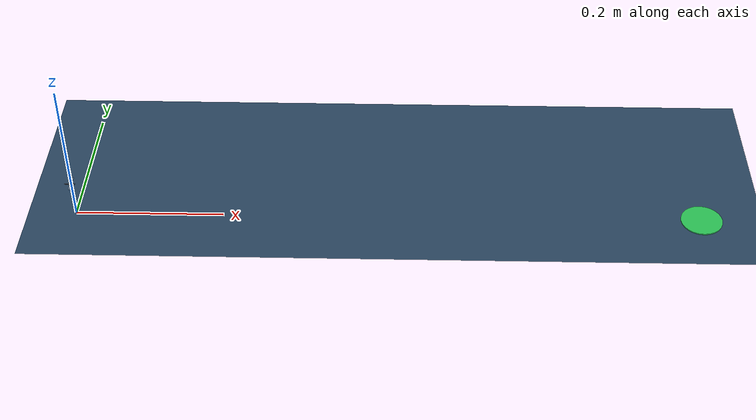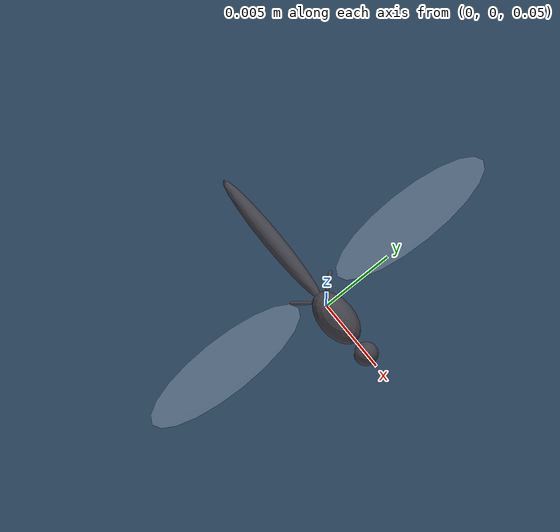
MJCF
<mujoco model="flapping_flyer">

  <option timestep="1e-4" gravity="0 0 -9.81" integrator="implicitfast"/>

  <!-- ===================== VISUALS (menagerie look) ===================== -->
  <visual>
    <headlight diffuse="0.6 0.6 0.6" ambient="0.3 0.3 0.3" specular="0 0 0"/>
    <rgba haze="0.15 0.25 0.35 1"/>
    <global azimuth="120" elevation="-20" offwidth="1280" offheight="960"/>
  </visual>

  <asset>
    <texture type="skybox" builtin="gradient" rgb1="0.3 0.5 0.7" rgb2="0 0 0"
             width="512" height="3072"/>
    <texture type="2d" name="groundplane" builtin="checker" mark="edge"
             rgb1="0.2 0.3 0.4" rgb2="0.1 0.2 0.3" markrgb="0.8 0.8 0.8"
             width="300" height="300"/>
    <material name="groundplane" texture="groundplane" texuniform="true"
              texrepeat="5 5" reflectance="0.2"/>
    <material name="thorax_mat" rgba="0.25 0.25 0.28 1"/>
    <material name="wing_mat"   rgba="0.55 0.62 0.70 0.45"/>
  </asset>

  <default>
    <joint damping="1e-8" armature="0"/>
    <geom density="1200"/>
  </default>

  <worldbody>
    <light pos="0 0 0.3" dir="0 0 -1" directional="true"
           diffuse="0.7 0.7 0.7"/>
    <geom name="floor" type="plane" size="0 0 0.01" material="groundplane"/>
    <geom name="bw0" type="box" pos="0.0000 -0.0320 0.0400" size="0.0050 0.0050 0.0400" group="3" rgba="0.62 0.66 0.72 1" contype="0" conaffinity="0"/>
    <geom name="bw1" type="box" pos="0.0070 -0.0320 0.0400" size="0.0050 0.0050 0.0400" group="3" rgba="0.62 0.66 0.72 1" contype="0" conaffinity="0"/>
    <geom name="bw2" type="box" pos="0.0139 -0.0320 0.0400" size="0.0050 0.0050 0.0400" group="3" rgba="0.62 0.66 0.72 1" contype="0" conaffinity="0"/>
    <geom name="bw3" type="box" pos="0.0209 -0.0320 0.0400" size="0.0050 0.0050 0.0400" group="3" rgba="0.62 0.66 0.72 1" contype="0" conaffinity="0"/>
    <geom name="bw4" type="box" pos="0.0278 -0.0320 0.0400" size="0.0050 0.0050 0.0400" group="3" rgba="0.62 0.66 0.72 1" contype="0" conaffinity="0"/>
    <geom name="bw5" type="box" pos="0.0348 -0.0320 0.0400" size="0.0050 0.0050 0.0400" group="3" rgba="0.62 0.66 0.72 1" contype="0" conaffinity="0"/>
    <geom name="bw6" type="box" pos="0.0417 -0.0320 0.0400" size="0.0050 0.0050 0.0400" group="3" rgba="0.62 0.66 0.72 1" contype="0" conaffinity="0"/>
    <geom name="bw7" type="box" pos="0.0487 -0.0320 0.0400" size="0.0050 0.0050 0.0400" group="3" rgba="0.62 0.66 0.72 1" contype="0" conaffinity="0"/>
    <geom name="bw8" type="box" pos="0.0556 -0.0320 0.0400" size="0.0050 0.0050 0.0400" group="3" rgba="0.62 0.66 0.72 1" contype="0" conaffinity="0"/>
    <geom name="bw9" type="box" pos="0.0626 -0.0320 0.0400" size="0.0050 0.0050 0.0400" group="3" rgba="0.62 0.66 0.72 1" contype="0" conaffinity="0"/>
    <geom name="bw10" type="box" pos="0.0695 -0.0320 0.0400" size="0.0050 0.0050 0.0400" group="3" rgba="0.62 0.66 0.72 1" contype="0" conaffinity="0"/>
    <geom name="bw11" type="box" pos="0.0765 -0.0320 0.0400" size="0.0050 0.0050 0.0400" group="3" rgba="0.62 0.66 0.72 1" contype="0" conaffinity="0"/>
    <geom name="bw12" type="box" pos="0.0834 -0.0320 0.0400" size="0.0050 0.0050 0.0400" group="3" rgba="0.62 0.66 0.72 1" contype="0" conaffinity="0"/>
    <geom name="bw13" type="box" pos="0.0904 -0.0320 0.0400" size="0.0050 0.0050 0.0400" group="3" rgba="0.62 0.66 0.72 1" contype="0" conaffinity="0"/>
    <geom name="bw14" type="box" pos="0.0973 -0.0320 0.0400" size="0.0050 0.0050 0.0400" group="3" rgba="0.62 0.66 0.72 1" contype="0" conaffinity="0"/>
    <geom name="bw15" type="box" pos="0.1043 -0.0320 0.0400" size="0.0050 0.0050 0.0400" group="3" rgba="0.62 0.66 0.72 1" contype="0" conaffinity="0"/>
    <geom name="bw16" type="box" pos="0.1112 -0.0320 0.0400" size="0.0050 0.0050 0.0400" group="3" rgba="0.62 0.66 0.72 1" contype="0" conaffinity="0"/>
    <geom name="bw17" type="box" pos="0.1182 -0.0320 0.0400" size="0.0050 0.0050 0.0400" group="3" rgba="0.62 0.66 0.72 1" contype="0" conaffinity="0"/>
    <geom name="bw18" type="box" pos="0.1251 -0.0320 0.0400" size="0.0050 0.0050 0.0400" group="3" rgba="0.62 0.66 0.72 1" contype="0" conaffinity="0"/>
    <geom name="bw19" type="box" pos="0.1321 -0.0320 0.0400" size="0.0050 0.0050 0.0400" group="3" rgba="0.62 0.66 0.72 1" contype="0" conaffinity="0"/>
    <geom name="bw20" type="box" pos="0.1390 -0.0320 0.0400" size="0.0050 0.0050 0.0400" group="3" rgba="0.62 0.66 0.72 1" contype="0" conaffinity="0"/>
    <geom name="bw21" type="box" pos="0.1460 -0.0320 0.0400" size="0.0050 0.0050 0.0400" group="3" rgba="0.62 0.66 0.72 1" contype="0" conaffinity="0"/>
    <geom name="bw22" type="box" pos="0.1529 -0.0320 0.0400" size="0.0050 0.0050 0.0400" group="3" rgba="0.62 0.66 0.72 1" contype="0" conaffinity="0"/>
    <geom name="bw23" type="box" pos="0.1599 -0.0320 0.0400" size="0.0050 0.0050 0.0400" group="3" rgba="0.62 0.66 0.72 1" contype="0" conaffinity="0"/>
    <geom name="bw24" type="box" pos="0.1668 -0.0320 0.0400" size="0.0050 0.0050 0.0400" group="3" rgba="0.62 0.66 0.72 1" contype="0" conaffinity="0"/>
    <geom name="bw25" type="box" pos="0.1738 -0.0320 0.0400" size="0.0050 0.0050 0.0400" group="3" rgba="0.62 0.66 0.72 1" contype="0" conaffinity="0"/>
    <geom name="bw26" type="box" pos="0.1807 -0.0320 0.0400" size="0.0050 0.0050 0.0400" group="3" rgba="0.62 0.66 0.72 1" contype="0" conaffinity="0"/>
    <geom name="bw27" type="box" pos="0.1877 -0.0320 0.0400" size="0.0050 0.0050 0.0400" group="3" rgba="0.62 0.66 0.72 1" contype="0" conaffinity="0"/>
    <geom name="bw28" type="box" pos="0.1946 -0.0320 0.0400" size="0.0050 0.0050 0.0400" group="3" rgba="0.62 0.66 0.72 1" contype="0" conaffinity="0"/>
    <geom name="bw29" type="box" pos="0.2016 -0.0320 0.0400" size="0.0050 0.0050 0.0400" group="3" rgba="0.62 0.66 0.72 1" contype="0" conaffinity="0"/>
    <geom name="bw30" type="box" pos="0.2085 -0.0320 0.0400" size="0.0050 0.0050 0.0400" group="3" rgba="0.62 0.66 0.72 1" contype="0" conaffinity="0"/>
    <geom name="bw31" type="box" pos="0.2155 -0.0320 0.0400" size="0.0050 0.0050 0.0400" group="3" rgba="0.62 0.66 0.72 1" contype="0" conaffinity="0"/>
    <geom name="bw32" type="box" pos="0.2224 -0.0320 0.0400" size="0.0050 0.0050 0.0400" group="3" rgba="0.62 0.66 0.72 1" contype="0" conaffinity="0"/>
    <geom name="bw33" type="box" pos="0.2294 -0.0320 0.0400" size="0.0050 0.0050 0.0400" group="3" rgba="0.62 0.66 0.72 1" contype="0" conaffinity="0"/>
    <geom name="bw34" type="box" pos="0.2363 -0.0320 0.0400" size="0.0050 0.0050 0.0400" group="3" rgba="0.62 0.66 0.72 1" contype="0" conaffinity="0"/>
    <geom name="bw35" type="box" pos="0.2433 -0.0320 0.0400" size="0.0050 0.0050 0.0400" group="3" rgba="0.62 0.66 0.72 1" contype="0" conaffinity="0"/>
    <geom name="bw36" type="box" pos="0.2502 -0.0320 0.0400" size="0.0050 0.0050 0.0400" group="3" rgba="0.62 0.66 0.72 1" contype="0" conaffinity="0"/>
    <geom name="bw37" type="box" pos="0.2572 -0.0320 0.0400" size="0.0050 0.0050 0.0400" group="3" rgba="0.62 0.66 0.72 1" contype="0" conaffinity="0"/>
    <geom name="bw38" type="box" pos="0.2641 -0.0320 0.0400" size="0.0050 0.0050 0.0400" group="3" rgba="0.62 0.66 0.72 1" contype="0" conaffinity="0"/>
    <geom name="bw39" type="box" pos="0.2711 -0.0320 0.0400" size="0.0050 0.0050 0.0400" group="3" rgba="0.62 0.66 0.72 1" contype="0" conaffinity="0"/>
    <geom name="bw40" type="box" pos="0.2780 -0.0320 0.0400" size="0.0050 0.0050 0.0400" group="3" rgba="0.62 0.66 0.72 1" contype="0" conaffinity="0"/>
    <geom name="bw41" type="box" pos="0.2850 -0.0320 0.0400" size="0.0050 0.0050 0.0400" group="3" rgba="0.62 0.66 0.72 1" contype="0" conaffinity="0"/>
    <geom name="bw42" type="box" pos="0.2919 -0.0320 0.0400" size="0.0050 0.0050 0.0400" group="3" rgba="0.62 0.66 0.72 1" contype="0" conaffinity="0"/>
    <geom name="bw43" type="box" pos="0.2989 -0.0320 0.0400" size="0.0050 0.0050 0.0400" group="3" rgba="0.62 0.66 0.72 1" contype="0" conaffinity="0"/>
    <geom name="bw44" type="box" pos="0.3058 -0.0320 0.0400" size="0.0050 0.0050 0.0400" group="3" rgba="0.62 0.66 0.72 1" contype="0" conaffinity="0"/>
    <geom name="bw45" type="box" pos="0.3128 -0.0320 0.0400" size="0.0050 0.0050 0.0400" group="3" rgba="0.62 0.66 0.72 1" contype="0" conaffinity="0"/>
    <geom name="bw46" type="box" pos="0.3197 -0.0320 0.0400" size="0.0050 0.0050 0.0400" group="3" rgba="0.62 0.66 0.72 1" contype="0" conaffinity="0"/>
    <geom name="bw47" type="box" pos="0.3267 -0.0320 0.0400" size="0.0050 0.0050 0.0400" group="3" rgba="0.62 0.66 0.72 1" contype="0" conaffinity="0"/>
    <geom name="bw48" type="box" pos="0.3336 -0.0320 0.0400" size="0.0050 0.0050 0.0400" group="3" rgba="0.62 0.66 0.72 1" contype="0" conaffinity="0"/>
    <geom name="bw49" type="box" pos="0.3406 -0.0320 0.0400" size="0.0050 0.0050 0.0400" group="3" rgba="0.62 0.66 0.72 1" contype="0" conaffinity="0"/>
    <geom name="bw50" type="box" pos="0.3475 -0.0320 0.0400" size="0.0050 0.0050 0.0400" group="3" rgba="0.62 0.66 0.72 1" contype="0" conaffinity="0"/>
    <geom name="bw51" type="box" pos="0.3545 -0.0320 0.0400" size="0.0050 0.0050 0.0400" group="3" rgba="0.62 0.66 0.72 1" contype="0" conaffinity="0"/>
    <geom name="bw52" type="box" pos="0.3614 -0.0320 0.0400" size="0.0050 0.0050 0.0400" group="3" rgba="0.62 0.66 0.72 1" contype="0" conaffinity="0"/>
    <geom name="bw53" type="box" pos="0.3684 -0.0320 0.0400" size="0.0050 0.0050 0.0400" group="3" rgba="0.62 0.66 0.72 1" contype="0" conaffinity="0"/>
    <geom name="bw54" type="box" pos="0.3753 -0.0320 0.0400" size="0.0050 0.0050 0.0400" group="3" rgba="0.62 0.66 0.72 1" contype="0" conaffinity="0"/>
    <geom name="bw55" type="box" pos="0.3823 -0.0320 0.0400" size="0.0050 0.0050 0.0400" group="3" rgba="0.62 0.66 0.72 1" contype="0" conaffinity="0"/>
    <geom name="bw56" type="box" pos="0.3892 -0.0320 0.0400" size="0.0050 0.0050 0.0400" group="3" rgba="0.62 0.66 0.72 1" contype="0" conaffinity="0"/>
    <geom name="bw57" type="box" pos="0.3962 -0.0320 0.0400" size="0.0050 0.0050 0.0400" group="3" rgba="0.62 0.66 0.72 1" contype="0" conaffinity="0"/>
    <geom name="bw58" type="box" pos="0.4031 -0.0320 0.0400" size="0.0050 0.0050 0.0400" group="3" rgba="0.62 0.66 0.72 1" contype="0" conaffinity="0"/>
    <geom name="bw59" type="box" pos="0.4101 -0.0320 0.0400" size="0.0050 0.0050 0.0400" group="3" rgba="0.62 0.66 0.72 1" contype="0" conaffinity="0"/>
    <geom name="bw60" type="box" pos="0.4170 -0.0320 0.0400" size="0.0050 0.0050 0.0400" group="3" rgba="0.62 0.66 0.72 1" contype="0" conaffinity="0"/>
    <geom name="bw61" type="box" pos="0.4240 -0.0320 0.0400" size="0.0050 0.0050 0.0400" group="3" rgba="0.62 0.66 0.72 1" contype="0" conaffinity="0"/>
    <geom name="bw62" type="box" pos="0.4310 -0.0320 0.0400" size="0.0050 0.0050 0.0400" group="3" rgba="0.62 0.66 0.72 1" contype="0" conaffinity="0"/>
    <geom name="bw63" type="box" pos="0.4379 -0.0320 0.0400" size="0.0050 0.0050 0.0400" group="3" rgba="0.62 0.66 0.72 1" contype="0" conaffinity="0"/>
    <geom name="bw64" type="box" pos="0.4449 -0.0320 0.0400" size="0.0050 0.0050 0.0400" group="3" rgba="0.62 0.66 0.72 1" contype="0" conaffinity="0"/>
    <geom name="bw65" type="box" pos="0.4518 -0.0320 0.0400" size="0.0050 0.0050 0.0400" group="3" rgba="0.62 0.66 0.72 1" contype="0" conaffinity="0"/>
    <geom name="bw66" type="box" pos="0.4588 -0.0320 0.0400" size="0.0050 0.0050 0.0400" group="3" rgba="0.62 0.66 0.72 1" contype="0" conaffinity="0"/>
    <geom name="bw67" type="box" pos="0.4657 -0.0320 0.0400" size="0.0050 0.0050 0.0400" group="3" rgba="0.62 0.66 0.72 1" contype="0" conaffinity="0"/>
    <geom name="bw68" type="box" pos="0.4727 -0.0320 0.0400" size="0.0050 0.0050 0.0400" group="3" rgba="0.62 0.66 0.72 1" contype="0" conaffinity="0"/>
    <geom name="bw69" type="box" pos="0.4796 -0.0320 0.0400" size="0.0050 0.0050 0.0400" group="3" rgba="0.62 0.66 0.72 1" contype="0" conaffinity="0"/>
    <geom name="bw70" type="box" pos="0.4866 -0.0320 0.0400" size="0.0050 0.0050 0.0400" group="3" rgba="0.62 0.66 0.72 1" contype="0" conaffinity="0"/>
    <geom name="bw71" type="box" pos="0.4935 -0.0320 0.0400" size="0.0050 0.0050 0.0400" group="3" rgba="0.62 0.66 0.72 1" contype="0" conaffinity="0"/>
    <geom name="bw72" type="box" pos="0.5005 -0.0320 0.0400" size="0.0050 0.0050 0.0400" group="3" rgba="0.62 0.66 0.72 1" contype="0" conaffinity="0"/>
    <geom name="bw73" type="box" pos="0.5074 -0.0320 0.0400" size="0.0050 0.0050 0.0400" group="3" rgba="0.62 0.66 0.72 1" contype="0" conaffinity="0"/>
    <geom name="bw74" type="box" pos="0.5144 -0.0320 0.0400" size="0.0050 0.0050 0.0400" group="3" rgba="0.62 0.66 0.72 1" contype="0" conaffinity="0"/>
    <geom name="bw75" type="box" pos="0.5213 -0.0320 0.0400" size="0.0050 0.0050 0.0400" group="3" rgba="0.62 0.66 0.72 1" contype="0" conaffinity="0"/>
    <geom name="bw76" type="box" pos="0.5283 -0.0320 0.0400" size="0.0050 0.0050 0.0400" group="3" rgba="0.62 0.66 0.72 1" contype="0" conaffinity="0"/>
    <geom name="bw77" type="box" pos="0.5352 -0.0320 0.0400" size="0.0050 0.0050 0.0400" group="3" rgba="0.62 0.66 0.72 1" contype="0" conaffinity="0"/>
    <geom name="bw78" type="box" pos="0.5422 -0.0320 0.0400" size="0.0050 0.0050 0.0400" group="3" rgba="0.62 0.66 0.72 1" contype="0" conaffinity="0"/>
    <geom name="bw79" type="box" pos="0.5491 -0.0320 0.0400" size="0.0050 0.0050 0.0400" group="3" rgba="0.62 0.66 0.72 1" contype="0" conaffinity="0"/>
    <geom name="bw80" type="box" pos="0.5561 -0.0320 0.0400" size="0.0050 0.0050 0.0400" group="3" rgba="0.62 0.66 0.72 1" contype="0" conaffinity="0"/>
    <geom name="bw81" type="box" pos="0.5630 -0.0320 0.0400" size="0.0050 0.0050 0.0400" group="3" rgba="0.62 0.66 0.72 1" contype="0" conaffinity="0"/>
    <geom name="bw82" type="box" pos="0.5700 -0.0320 0.0400" size="0.0050 0.0050 0.0400" group="3" rgba="0.62 0.66 0.72 1" contype="0" conaffinity="0"/>
    <geom name="bw83" type="box" pos="0.5769 -0.0320 0.0400" size="0.0050 0.0050 0.0400" group="3" rgba="0.62 0.66 0.72 1" contype="0" conaffinity="0"/>
    <geom name="bw84" type="box" pos="0.5839 -0.0320 0.0400" size="0.0050 0.0050 0.0400" group="3" rgba="0.62 0.66 0.72 1" contype="0" conaffinity="0"/>
    <geom name="bw85" type="box" pos="0.5908 -0.0320 0.0400" size="0.0050 0.0050 0.0400" group="3" rgba="0.62 0.66 0.72 1" contype="0" conaffinity="0"/>
    <geom name="bw86" type="box" pos="0.5978 -0.0320 0.0400" size="0.0050 0.0050 0.0400" group="3" rgba="0.62 0.66 0.72 1" contype="0" conaffinity="0"/>
    <geom name="bw87" type="box" pos="0.6047 -0.0320 0.0400" size="0.0050 0.0050 0.0400" group="3" rgba="0.62 0.66 0.72 1" contype="0" conaffinity="0"/>
    <geom name="bw88" type="box" pos="0.6117 -0.0320 0.0400" size="0.0050 0.0050 0.0400" group="3" rgba="0.62 0.66 0.72 1" contype="0" conaffinity="0"/>
    <geom name="bw89" type="box" pos="0.6186 -0.0320 0.0400" size="0.0050 0.0050 0.0400" group="3" rgba="0.62 0.66 0.72 1" contype="0" conaffinity="0"/>
    <geom name="bw90" type="box" pos="0.6256 -0.0320 0.0400" size="0.0050 0.0050 0.0400" group="3" rgba="0.62 0.66 0.72 1" contype="0" conaffinity="0"/>
    <geom name="bw91" type="box" pos="0.6325 -0.0320 0.0400" size="0.0050 0.0050 0.0400" group="3" rgba="0.62 0.66 0.72 1" contype="0" conaffinity="0"/>
    <geom name="bw92" type="box" pos="0.6395 -0.0320 0.0400" size="0.0050 0.0050 0.0400" group="3" rgba="0.62 0.66 0.72 1" contype="0" conaffinity="0"/>
    <geom name="bw93" type="box" pos="0.6464 -0.0320 0.0400" size="0.0050 0.0050 0.0400" group="3" rgba="0.62 0.66 0.72 1" contype="0" conaffinity="0"/>
    <geom name="bw94" type="box" pos="0.6534 -0.0320 0.0400" size="0.0050 0.0050 0.0400" group="3" rgba="0.62 0.66 0.72 1" contype="0" conaffinity="0"/>
    <geom name="bw95" type="box" pos="0.6603 -0.0320 0.0400" size="0.0050 0.0050 0.0400" group="3" rgba="0.62 0.66 0.72 1" contype="0" conaffinity="0"/>
    <geom name="bw96" type="box" pos="0.6673 -0.0320 0.0400" size="0.0050 0.0050 0.0400" group="3" rgba="0.62 0.66 0.72 1" contype="0" conaffinity="0"/>
    <geom name="bw97" type="box" pos="0.6742 -0.0320 0.0400" size="0.0050 0.0050 0.0400" group="3" rgba="0.62 0.66 0.72 1" contype="0" conaffinity="0"/>
    <geom name="bw98" type="box" pos="0.6812 -0.0320 0.0400" size="0.0050 0.0050 0.0400" group="3" rgba="0.62 0.66 0.72 1" contype="0" conaffinity="0"/>
    <geom name="bw99" type="box" pos="0.6881 -0.0320 0.0400" size="0.0050 0.0050 0.0400" group="3" rgba="0.62 0.66 0.72 1" contype="0" conaffinity="0"/>
    <geom name="bw100" type="box" pos="0.6951 -0.0320 0.0400" size="0.0050 0.0050 0.0400" group="3" rgba="0.62 0.66 0.72 1" contype="0" conaffinity="0"/>
    <geom name="bw101" type="box" pos="0.7020 -0.0320 0.0400" size="0.0050 0.0050 0.0400" group="3" rgba="0.62 0.66 0.72 1" contype="0" conaffinity="0"/>
    <geom name="bw102" type="box" pos="0.7090 -0.0320 0.0400" size="0.0050 0.0050 0.0400" group="3" rgba="0.62 0.66 0.72 1" contype="0" conaffinity="0"/>
    <geom name="bw103" type="box" pos="0.7159 -0.0320 0.0400" size="0.0050 0.0050 0.0400" group="3" rgba="0.62 0.66 0.72 1" contype="0" conaffinity="0"/>
    <geom name="bw104" type="box" pos="0.7229 -0.0320 0.0400" size="0.0050 0.0050 0.0400" group="3" rgba="0.62 0.66 0.72 1" contype="0" conaffinity="0"/>
    <geom name="bw105" type="box" pos="0.7298 -0.0320 0.0400" size="0.0050 0.0050 0.0400" group="3" rgba="0.62 0.66 0.72 1" contype="0" conaffinity="0"/>
    <geom name="bw106" type="box" pos="0.7368 -0.0320 0.0400" size="0.0050 0.0050 0.0400" group="3" rgba="0.62 0.66 0.72 1" contype="0" conaffinity="0"/>
    <geom name="bw107" type="box" pos="0.7437 -0.0320 0.0400" size="0.0050 0.0050 0.0400" group="3" rgba="0.62 0.66 0.72 1" contype="0" conaffinity="0"/>
    <geom name="bw108" type="box" pos="0.7507 -0.0320 0.0400" size="0.0050 0.0050 0.0400" group="3" rgba="0.62 0.66 0.72 1" contype="0" conaffinity="0"/>
    <geom name="bw109" type="box" pos="0.7576 -0.0320 0.0400" size="0.0050 0.0050 0.0400" group="3" rgba="0.62 0.66 0.72 1" contype="0" conaffinity="0"/>
    <geom name="bw110" type="box" pos="0.7646 -0.0320 0.0400" size="0.0050 0.0050 0.0400" group="3" rgba="0.62 0.66 0.72 1" contype="0" conaffinity="0"/>
    <geom name="bw111" type="box" pos="0.7715 -0.0320 0.0400" size="0.0050 0.0050 0.0400" group="3" rgba="0.62 0.66 0.72 1" contype="0" conaffinity="0"/>
    <geom name="bw112" type="box" pos="0.7785 -0.0320 0.0400" size="0.0050 0.0050 0.0400" group="3" rgba="0.62 0.66 0.72 1" contype="0" conaffinity="0"/>
    <geom name="bw113" type="box" pos="0.7854 -0.0320 0.0400" size="0.0050 0.0050 0.0400" group="3" rgba="0.62 0.66 0.72 1" contype="0" conaffinity="0"/>
    <geom name="bw114" type="box" pos="0.7924 -0.0320 0.0400" size="0.0050 0.0050 0.0400" group="3" rgba="0.62 0.66 0.72 1" contype="0" conaffinity="0"/>
    <geom name="bw115" type="box" pos="0.7993 -0.0320 0.0400" size="0.0050 0.0050 0.0400" group="3" rgba="0.62 0.66 0.72 1" contype="0" conaffinity="0"/>
    <geom name="bw116" type="box" pos="0.8063 -0.0320 0.0400" size="0.0050 0.0050 0.0400" group="3" rgba="0.62 0.66 0.72 1" contype="0" conaffinity="0"/>
    <geom name="bw117" type="box" pos="0.8132 -0.0320 0.0400" size="0.0050 0.0050 0.0400" group="3" rgba="0.62 0.66 0.72 1" contype="0" conaffinity="0"/>
    <geom name="bw118" type="box" pos="0.8202 -0.0320 0.0400" size="0.0050 0.0050 0.0400" group="3" rgba="0.62 0.66 0.72 1" contype="0" conaffinity="0"/>
    <geom name="bw119" type="box" pos="0.8271 -0.0320 0.0400" size="0.0050 0.0050 0.0400" group="3" rgba="0.62 0.66 0.72 1" contype="0" conaffinity="0"/>
    <geom name="bw120" type="box" pos="0.8341 -0.0320 0.0400" size="0.0050 0.0050 0.0400" group="3" rgba="0.62 0.66 0.72 1" contype="0" conaffinity="0"/>
    <geom name="bw121" type="box" pos="0.8410 -0.0320 0.0400" size="0.0050 0.0050 0.0400" group="3" rgba="0.62 0.66 0.72 1" contype="0" conaffinity="0"/>
    <geom name="bw122" type="box" pos="0.8480 -0.0320 0.0400" size="0.0050 0.0050 0.0400" group="3" rgba="0.62 0.66 0.72 1" contype="0" conaffinity="0"/>
    <geom name="bw123" type="box" pos="0.0000 0.0320 0.0400" size="0.0050 0.0050 0.0400" group="3" rgba="0.62 0.66 0.72 1" contype="0" conaffinity="0"/>
    <geom name="bw124" type="box" pos="0.0070 0.0320 0.0400" size="0.0050 0.0050 0.0400" group="3" rgba="0.62 0.66 0.72 1" contype="0" conaffinity="0"/>
    <geom name="bw125" type="box" pos="0.0140 0.0320 0.0400" size="0.0050 0.0050 0.0400" group="3" rgba="0.62 0.66 0.72 1" contype="0" conaffinity="0"/>
    <geom name="bw126" type="box" pos="0.0209 0.0320 0.0400" size="0.0050 0.0050 0.0400" group="3" rgba="0.62 0.66 0.72 1" contype="0" conaffinity="0"/>
    <geom name="bw127" type="box" pos="0.0279 0.0320 0.0400" size="0.0050 0.0050 0.0400" group="3" rgba="0.62 0.66 0.72 1" contype="0" conaffinity="0"/>
    <geom name="bw128" type="box" pos="0.0349 0.0320 0.0400" size="0.0050 0.0050 0.0400" group="3" rgba="0.62 0.66 0.72 1" contype="0" conaffinity="0"/>
    <geom name="bw129" type="box" pos="0.0419 0.0320 0.0400" size="0.0050 0.0050 0.0400" group="3" rgba="0.62 0.66 0.72 1" contype="0" conaffinity="0"/>
    <geom name="bw130" type="box" pos="0.0488 0.0320 0.0400" size="0.0050 0.0050 0.0400" group="3" rgba="0.62 0.66 0.72 1" contype="0" conaffinity="0"/>
    <geom name="bw131" type="box" pos="0.0558 0.0320 0.0400" size="0.0050 0.0050 0.0400" group="3" rgba="0.62 0.66 0.72 1" contype="0" conaffinity="0"/>
    <geom name="bw132" type="box" pos="0.0628 0.0320 0.0400" size="0.0050 0.0050 0.0400" group="3" rgba="0.62 0.66 0.72 1" contype="0" conaffinity="0"/>
    <geom name="bw133" type="box" pos="0.0698 0.0320 0.0400" size="0.0050 0.0050 0.0400" group="3" rgba="0.62 0.66 0.72 1" contype="0" conaffinity="0"/>
    <geom name="bw134" type="box" pos="0.0767 0.0320 0.0400" size="0.0050 0.0050 0.0400" group="3" rgba="0.62 0.66 0.72 1" contype="0" conaffinity="0"/>
    <geom name="bw135" type="box" pos="0.0837 0.0320 0.0400" size="0.0050 0.0050 0.0400" group="3" rgba="0.62 0.66 0.72 1" contype="0" conaffinity="0"/>
    <geom name="bw136" type="box" pos="0.0907 0.0320 0.0400" size="0.0050 0.0050 0.0400" group="3" rgba="0.62 0.66 0.72 1" contype="0" conaffinity="0"/>
    <geom name="bw137" type="box" pos="0.0977 0.0320 0.0400" size="0.0050 0.0050 0.0400" group="3" rgba="0.62 0.66 0.72 1" contype="0" conaffinity="0"/>
    <geom name="bw138" type="box" pos="0.1047 0.0320 0.0400" size="0.0050 0.0050 0.0400" group="3" rgba="0.62 0.66 0.72 1" contype="0" conaffinity="0"/>
    <geom name="bw139" type="box" pos="0.1116 0.0320 0.0400" size="0.0050 0.0050 0.0400" group="3" rgba="0.62 0.66 0.72 1" contype="0" conaffinity="0"/>
    <geom name="bw140" type="box" pos="0.1186 0.0320 0.0400" size="0.0050 0.0050 0.0400" group="3" rgba="0.62 0.66 0.72 1" contype="0" conaffinity="0"/>
    <geom name="bw141" type="box" pos="0.1256 0.0320 0.0400" size="0.0050 0.0050 0.0400" group="3" rgba="0.62 0.66 0.72 1" contype="0" conaffinity="0"/>
    <geom name="bw142" type="box" pos="0.1326 0.0320 0.0400" size="0.0050 0.0050 0.0400" group="3" rgba="0.62 0.66 0.72 1" contype="0" conaffinity="0"/>
    <geom name="bw143" type="box" pos="0.1395 0.0320 0.0400" size="0.0050 0.0050 0.0400" group="3" rgba="0.62 0.66 0.72 1" contype="0" conaffinity="0"/>
    <geom name="bw144" type="box" pos="0.1465 0.0320 0.0400" size="0.0050 0.0050 0.0400" group="3" rgba="0.62 0.66 0.72 1" contype="0" conaffinity="0"/>
    <geom name="bw145" type="box" pos="0.1535 0.0320 0.0400" size="0.0050 0.0050 0.0400" group="3" rgba="0.62 0.66 0.72 1" contype="0" conaffinity="0"/>
    <geom name="bw146" type="box" pos="0.1605 0.0320 0.0400" size="0.0050 0.0050 0.0400" group="3" rgba="0.62 0.66 0.72 1" contype="0" conaffinity="0"/>
    <geom name="bw147" type="box" pos="0.1674 0.0320 0.0400" size="0.0050 0.0050 0.0400" group="3" rgba="0.62 0.66 0.72 1" contype="0" conaffinity="0"/>
    <geom name="bw148" type="box" pos="0.1744 0.0320 0.0400" size="0.0050 0.0050 0.0400" group="3" rgba="0.62 0.66 0.72 1" contype="0" conaffinity="0"/>
    <geom name="bw149" type="box" pos="0.1814 0.0320 0.0400" size="0.0050 0.0050 0.0400" group="3" rgba="0.62 0.66 0.72 1" contype="0" conaffinity="0"/>
    <geom name="bw150" type="box" pos="0.1884 0.0320 0.0400" size="0.0050 0.0050 0.0400" group="3" rgba="0.62 0.66 0.72 1" contype="0" conaffinity="0"/>
    <geom name="bw151" type="box" pos="0.1953 0.0320 0.0400" size="0.0050 0.0050 0.0400" group="3" rgba="0.62 0.66 0.72 1" contype="0" conaffinity="0"/>
    <geom name="bw152" type="box" pos="0.2023 0.0320 0.0400" size="0.0050 0.0050 0.0400" group="3" rgba="0.62 0.66 0.72 1" contype="0" conaffinity="0"/>
    <geom name="bw153" type="box" pos="0.2093 0.0320 0.0400" size="0.0050 0.0050 0.0400" group="3" rgba="0.62 0.66 0.72 1" contype="0" conaffinity="0"/>
    <geom name="bw154" type="box" pos="0.2163 0.0320 0.0400" size="0.0050 0.0050 0.0400" group="3" rgba="0.62 0.66 0.72 1" contype="0" conaffinity="0"/>
    <geom name="bw155" type="box" pos="0.2233 0.0320 0.0400" size="0.0050 0.0050 0.0400" group="3" rgba="0.62 0.66 0.72 1" contype="0" conaffinity="0"/>
    <geom name="bw156" type="box" pos="0.2302 0.0320 0.0400" size="0.0050 0.0050 0.0400" group="3" rgba="0.62 0.66 0.72 1" contype="0" conaffinity="0"/>
    <geom name="bw157" type="box" pos="0.2372 0.0320 0.0400" size="0.0050 0.0050 0.0400" group="3" rgba="0.62 0.66 0.72 1" contype="0" conaffinity="0"/>
    <geom name="bw158" type="box" pos="0.2442 0.0320 0.0400" size="0.0050 0.0050 0.0400" group="3" rgba="0.62 0.66 0.72 1" contype="0" conaffinity="0"/>
    <geom name="bw159" type="box" pos="0.2512 0.0320 0.0400" size="0.0050 0.0050 0.0400" group="3" rgba="0.62 0.66 0.72 1" contype="0" conaffinity="0"/>
    <geom name="bw160" type="box" pos="0.2581 0.0320 0.0400" size="0.0050 0.0050 0.0400" group="3" rgba="0.62 0.66 0.72 1" contype="0" conaffinity="0"/>
    <geom name="bw161" type="box" pos="0.2651 0.0320 0.0400" size="0.0050 0.0050 0.0400" group="3" rgba="0.62 0.66 0.72 1" contype="0" conaffinity="0"/>
    <geom name="bw162" type="box" pos="0.2721 0.0320 0.0400" size="0.0050 0.0050 0.0400" group="3" rgba="0.62 0.66 0.72 1" contype="0" conaffinity="0"/>
    <geom name="bw163" type="box" pos="0.2791 0.0320 0.0400" size="0.0050 0.0050 0.0400" group="3" rgba="0.62 0.66 0.72 1" contype="0" conaffinity="0"/>
    <geom name="bw164" type="box" pos="0.2860 0.0320 0.0400" size="0.0050 0.0050 0.0400" group="3" rgba="0.62 0.66 0.72 1" contype="0" conaffinity="0"/>
    <geom name="bw165" type="box" pos="0.2930 0.0320 0.0400" size="0.0050 0.0050 0.0400" group="3" rgba="0.62 0.66 0.72 1" contype="0" conaffinity="0"/>
    <geom name="bw166" type="box" pos="0.3000 0.0320 0.0400" size="0.0050 0.0050 0.0400" group="3" rgba="0.62 0.66 0.72 1" contype="0" conaffinity="0"/>
    <geom name="bw167" type="box" pos="0.4280 0.0320 0.0400" size="0.0050 0.0050 0.0400" group="3" rgba="0.62 0.66 0.72 1" contype="0" conaffinity="0"/>
    <geom name="bw168" type="box" pos="0.4349 0.0320 0.0400" size="0.0050 0.0050 0.0400" group="3" rgba="0.62 0.66 0.72 1" contype="0" conaffinity="0"/>
    <geom name="bw169" type="box" pos="0.4418 0.0320 0.0400" size="0.0050 0.0050 0.0400" group="3" rgba="0.62 0.66 0.72 1" contype="0" conaffinity="0"/>
    <geom name="bw170" type="box" pos="0.4487 0.0320 0.0400" size="0.0050 0.0050 0.0400" group="3" rgba="0.62 0.66 0.72 1" contype="0" conaffinity="0"/>
    <geom name="bw171" type="box" pos="0.4555 0.0320 0.0400" size="0.0050 0.0050 0.0400" group="3" rgba="0.62 0.66 0.72 1" contype="0" conaffinity="0"/>
    <geom name="bw172" type="box" pos="0.4624 0.0320 0.0400" size="0.0050 0.0050 0.0400" group="3" rgba="0.62 0.66 0.72 1" contype="0" conaffinity="0"/>
    <geom name="bw173" type="box" pos="0.4693 0.0320 0.0400" size="0.0050 0.0050 0.0400" group="3" rgba="0.62 0.66 0.72 1" contype="0" conaffinity="0"/>
    <geom name="bw174" type="box" pos="0.4762 0.0320 0.0400" size="0.0050 0.0050 0.0400" group="3" rgba="0.62 0.66 0.72 1" contype="0" conaffinity="0"/>
    <geom name="bw175" type="box" pos="0.4831 0.0320 0.0400" size="0.0050 0.0050 0.0400" group="3" rgba="0.62 0.66 0.72 1" contype="0" conaffinity="0"/>
    <geom name="bw176" type="box" pos="0.4900 0.0320 0.0400" size="0.0050 0.0050 0.0400" group="3" rgba="0.62 0.66 0.72 1" contype="0" conaffinity="0"/>
    <geom name="bw177" type="box" pos="0.4969 0.0320 0.0400" size="0.0050 0.0050 0.0400" group="3" rgba="0.62 0.66 0.72 1" contype="0" conaffinity="0"/>
    <geom name="bw178" type="box" pos="0.5037 0.0320 0.0400" size="0.0050 0.0050 0.0400" group="3" rgba="0.62 0.66 0.72 1" contype="0" conaffinity="0"/>
    <geom name="bw179" type="box" pos="0.5106 0.0320 0.0400" size="0.0050 0.0050 0.0400" group="3" rgba="0.62 0.66 0.72 1" contype="0" conaffinity="0"/>
    <geom name="bw180" type="box" pos="0.5175 0.0320 0.0400" size="0.0050 0.0050 0.0400" group="3" rgba="0.62 0.66 0.72 1" contype="0" conaffinity="0"/>
    <geom name="bw181" type="box" pos="0.5244 0.0320 0.0400" size="0.0050 0.0050 0.0400" group="3" rgba="0.62 0.66 0.72 1" contype="0" conaffinity="0"/>
    <geom name="bw182" type="box" pos="0.5313 0.0320 0.0400" size="0.0050 0.0050 0.0400" group="3" rgba="0.62 0.66 0.72 1" contype="0" conaffinity="0"/>
    <geom name="bw183" type="box" pos="0.5382 0.0320 0.0400" size="0.0050 0.0050 0.0400" group="3" rgba="0.62 0.66 0.72 1" contype="0" conaffinity="0"/>
    <geom name="bw184" type="box" pos="0.5450 0.0320 0.0400" size="0.0050 0.0050 0.0400" group="3" rgba="0.62 0.66 0.72 1" contype="0" conaffinity="0"/>
    <geom name="bw185" type="box" pos="0.5519 0.0320 0.0400" size="0.0050 0.0050 0.0400" group="3" rgba="0.62 0.66 0.72 1" contype="0" conaffinity="0"/>
    <geom name="bw186" type="box" pos="0.5588 0.0320 0.0400" size="0.0050 0.0050 0.0400" group="3" rgba="0.62 0.66 0.72 1" contype="0" conaffinity="0"/>
    <geom name="bw187" type="box" pos="0.5657 0.0320 0.0400" size="0.0050 0.0050 0.0400" group="3" rgba="0.62 0.66 0.72 1" contype="0" conaffinity="0"/>
    <geom name="bw188" type="box" pos="0.5726 0.0320 0.0400" size="0.0050 0.0050 0.0400" group="3" rgba="0.62 0.66 0.72 1" contype="0" conaffinity="0"/>
    <geom name="bw189" type="box" pos="0.5795 0.0320 0.0400" size="0.0050 0.0050 0.0400" group="3" rgba="0.62 0.66 0.72 1" contype="0" conaffinity="0"/>
    <geom name="bw190" type="box" pos="0.5864 0.0320 0.0400" size="0.0050 0.0050 0.0400" group="3" rgba="0.62 0.66 0.72 1" contype="0" conaffinity="0"/>
    <geom name="bw191" type="box" pos="0.5932 0.0320 0.0400" size="0.0050 0.0050 0.0400" group="3" rgba="0.62 0.66 0.72 1" contype="0" conaffinity="0"/>
    <geom name="bw192" type="box" pos="0.6001 0.0320 0.0400" size="0.0050 0.0050 0.0400" group="3" rgba="0.62 0.66 0.72 1" contype="0" conaffinity="0"/>
    <geom name="bw193" type="box" pos="0.6070 0.0320 0.0400" size="0.0050 0.0050 0.0400" group="3" rgba="0.62 0.66 0.72 1" contype="0" conaffinity="0"/>
    <geom name="bw194" type="box" pos="0.6139 0.0320 0.0400" size="0.0050 0.0050 0.0400" group="3" rgba="0.62 0.66 0.72 1" contype="0" conaffinity="0"/>
    <geom name="bw195" type="box" pos="0.6208 0.0320 0.0400" size="0.0050 0.0050 0.0400" group="3" rgba="0.62 0.66 0.72 1" contype="0" conaffinity="0"/>
    <geom name="bw196" type="box" pos="0.6277 0.0320 0.0400" size="0.0050 0.0050 0.0400" group="3" rgba="0.62 0.66 0.72 1" contype="0" conaffinity="0"/>
    <geom name="bw197" type="box" pos="0.6346 0.0320 0.0400" size="0.0050 0.0050 0.0400" group="3" rgba="0.62 0.66 0.72 1" contype="0" conaffinity="0"/>
    <geom name="bw198" type="box" pos="0.6414 0.0320 0.0400" size="0.0050 0.0050 0.0400" group="3" rgba="0.62 0.66 0.72 1" contype="0" conaffinity="0"/>
    <geom name="bw199" type="box" pos="0.6483 0.0320 0.0400" size="0.0050 0.0050 0.0400" group="3" rgba="0.62 0.66 0.72 1" contype="0" conaffinity="0"/>
    <geom name="bw200" type="box" pos="0.6552 0.0320 0.0400" size="0.0050 0.0050 0.0400" group="3" rgba="0.62 0.66 0.72 1" contype="0" conaffinity="0"/>
    <geom name="bw201" type="box" pos="0.6621 0.0320 0.0400" size="0.0050 0.0050 0.0400" group="3" rgba="0.62 0.66 0.72 1" contype="0" conaffinity="0"/>
    <geom name="bw202" type="box" pos="0.6690 0.0320 0.0400" size="0.0050 0.0050 0.0400" group="3" rgba="0.62 0.66 0.72 1" contype="0" conaffinity="0"/>
    <geom name="bw203" type="box" pos="0.6759 0.0320 0.0400" size="0.0050 0.0050 0.0400" group="3" rgba="0.62 0.66 0.72 1" contype="0" conaffinity="0"/>
    <geom name="bw204" type="box" pos="0.6828 0.0320 0.0400" size="0.0050 0.0050 0.0400" group="3" rgba="0.62 0.66 0.72 1" contype="0" conaffinity="0"/>
    <geom name="bw205" type="box" pos="0.6896 0.0320 0.0400" size="0.0050 0.0050 0.0400" group="3" rgba="0.62 0.66 0.72 1" contype="0" conaffinity="0"/>
    <geom name="bw206" type="box" pos="0.6965 0.0320 0.0400" size="0.0050 0.0050 0.0400" group="3" rgba="0.62 0.66 0.72 1" contype="0" conaffinity="0"/>
    <geom name="bw207" type="box" pos="0.7034 0.0320 0.0400" size="0.0050 0.0050 0.0400" group="3" rgba="0.62 0.66 0.72 1" contype="0" conaffinity="0"/>
    <geom name="bw208" type="box" pos="0.7103 0.0320 0.0400" size="0.0050 0.0050 0.0400" group="3" rgba="0.62 0.66 0.72 1" contype="0" conaffinity="0"/>
    <geom name="bw209" type="box" pos="0.7172 0.0320 0.0400" size="0.0050 0.0050 0.0400" group="3" rgba="0.62 0.66 0.72 1" contype="0" conaffinity="0"/>
    <geom name="bw210" type="box" pos="0.7241 0.0320 0.0400" size="0.0050 0.0050 0.0400" group="3" rgba="0.62 0.66 0.72 1" contype="0" conaffinity="0"/>
    <geom name="bw211" type="box" pos="0.7310 0.0320 0.0400" size="0.0050 0.0050 0.0400" group="3" rgba="0.62 0.66 0.72 1" contype="0" conaffinity="0"/>
    <geom name="bw212" type="box" pos="0.7378 0.0320 0.0400" size="0.0050 0.0050 0.0400" group="3" rgba="0.62 0.66 0.72 1" contype="0" conaffinity="0"/>
    <geom name="bw213" type="box" pos="0.7447 0.0320 0.0400" size="0.0050 0.0050 0.0400" group="3" rgba="0.62 0.66 0.72 1" contype="0" conaffinity="0"/>
    <geom name="bw214" type="box" pos="0.7516 0.0320 0.0400" size="0.0050 0.0050 0.0400" group="3" rgba="0.62 0.66 0.72 1" contype="0" conaffinity="0"/>
    <geom name="bw215" type="box" pos="0.7585 0.0320 0.0400" size="0.0050 0.0050 0.0400" group="3" rgba="0.62 0.66 0.72 1" contype="0" conaffinity="0"/>
    <geom name="bw216" type="box" pos="0.7654 0.0320 0.0400" size="0.0050 0.0050 0.0400" group="3" rgba="0.62 0.66 0.72 1" contype="0" conaffinity="0"/>
    <geom name="bw217" type="box" pos="0.7723 0.0320 0.0400" size="0.0050 0.0050 0.0400" group="3" rgba="0.62 0.66 0.72 1" contype="0" conaffinity="0"/>
    <geom name="bw218" type="box" pos="0.7791 0.0320 0.0400" size="0.0050 0.0050 0.0400" group="3" rgba="0.62 0.66 0.72 1" contype="0" conaffinity="0"/>
    <geom name="bw219" type="box" pos="0.7860 0.0320 0.0400" size="0.0050 0.0050 0.0400" group="3" rgba="0.62 0.66 0.72 1" contype="0" conaffinity="0"/>
    <geom name="bw220" type="box" pos="0.7929 0.0320 0.0400" size="0.0050 0.0050 0.0400" group="3" rgba="0.62 0.66 0.72 1" contype="0" conaffinity="0"/>
    <geom name="bw221" type="box" pos="0.7998 0.0320 0.0400" size="0.0050 0.0050 0.0400" group="3" rgba="0.62 0.66 0.72 1" contype="0" conaffinity="0"/>
    <geom name="bw222" type="box" pos="0.8067 0.0320 0.0400" size="0.0050 0.0050 0.0400" group="3" rgba="0.62 0.66 0.72 1" contype="0" conaffinity="0"/>
    <geom name="bw223" type="box" pos="0.8136 0.0320 0.0400" size="0.0050 0.0050 0.0400" group="3" rgba="0.62 0.66 0.72 1" contype="0" conaffinity="0"/>
    <geom name="bw224" type="box" pos="0.8205 0.0320 0.0400" size="0.0050 0.0050 0.0400" group="3" rgba="0.62 0.66 0.72 1" contype="0" conaffinity="0"/>
    <geom name="bw225" type="box" pos="0.8273 0.0320 0.0400" size="0.0050 0.0050 0.0400" group="3" rgba="0.62 0.66 0.72 1" contype="0" conaffinity="0"/>
    <geom name="bw226" type="box" pos="0.8342 0.0320 0.0400" size="0.0050 0.0050 0.0400" group="3" rgba="0.62 0.66 0.72 1" contype="0" conaffinity="0"/>
    <geom name="bw227" type="box" pos="0.8411 0.0320 0.0400" size="0.0050 0.0050 0.0400" group="3" rgba="0.62 0.66 0.72 1" contype="0" conaffinity="0"/>
    <geom name="bw228" type="box" pos="0.8480 0.0320 0.0400" size="0.0050 0.0050 0.0400" group="3" rgba="0.62 0.66 0.72 1" contype="0" conaffinity="0"/>
    <geom name="fin0" type="cylinder" pos="0.8480 0.0000 0.001" size="0.0280 0.001" rgba="0.2 0.85 0.35 0.85" group="2" contype="0" conaffinity="0"/>

    <body name="thorax" pos="0 0 0.05">

      <!-- main flight mass: thorax block, just below the wing hinges -->
      <geom name="thorax_g" type="ellipsoid" pos="0.001 0 0"
            size="0.0020 0.0012 0.0012" mass="60e-6" material="thorax_mat"/>
      <!-- head: small, forward -->
      <geom name="head_g" type="sphere" pos="0.0040 0 0"
            size="0.0008" mass="3e-6" material="thorax_mat"/>
      <!-- abdomen / tail: long, THIN, LIGHT, trailing aft. Tapered ellipsoid
           reads as an abdomen and gives a little aft area for pitch stability
           at almost no mass cost. -->
      <geom name="tail_g" type="ellipsoid" pos="-0.0055 0 0"
            size="0.0050 0.0006 0.0006" mass="12e-6" material="thorax_mat"/>

      <!-- halteres: tiny nubs just behind the wing bases. Visual now,
           EARMARKED as the future rate sensor. Mass ~0.1 mg each (negligible). -->
      <geom name="haltere_R" type="capsule" fromto="-0.0008 0.0007 0  -0.0016 0.0016 -0.0004"
            size="0.00012" mass="1e-7" material="thorax_mat"/>
      <geom name="haltere_L" type="capsule" fromto="-0.0008 -0.0007 0  -0.0016 -0.0016 -0.0004"
            size="0.00012" mass="1e-7" material="thorax_mat"/>

      <!-- ============ RIGHT WING (extends +y) ============
           shoulder above & right of the thorax centre -->
      <body name="stroke_R" pos="0 0.0010 0.0012">
        <joint name="stroke_R" type="hinge" axis="0 0 1" range="-90 90" armature="1e-8"/>
        <inertial pos="0 0 0" mass="1e-7" diaginertia="1e-13 1e-13 1e-13"/>
        <body name="wing_R" pos="0 0 0">
          <joint name="pitch_R" type="hinge" axis="0 1 0" range="-120 120" armature="1e-8"/>
          <geom name="wing_R_g" type="ellipsoid" pos="-0.000875 0.0066 0"
                size="0.00175 0.0060 0.000025" material="wing_mat"
                mass="1.0e-6"/>
        </body>
      </body>

      <!-- ============ LEFT WING (extends -y) ============ -->
      <body name="stroke_L" pos="0 -0.0010 0.0012">
        <joint name="stroke_L" type="hinge" axis="0 0 1" range="-90 90" armature="1e-8"/>
        <inertial pos="0 0 0" mass="1e-7" diaginertia="1e-13 1e-13 1e-13"/>
        <body name="wing_L" pos="0 0 0">
          <joint name="pitch_L" type="hinge" axis="0 1 0" range="-120 120" armature="1e-8"/>
          <geom name="wing_L_g" type="ellipsoid" pos="-0.000875 -0.0066 0"
                size="0.00175 0.0060 0.000025" material="wing_mat"
                mass="1.0e-6"/>
        </body>
      </body>
    </body>
  </worldbody>

  <!-- Position actuators on the four hinges. Gains kept gentle so they are
       stable under implicitfast; Stage 2 may instead PRESCRIBE kinematics. -->
  <actuator>
    <position name="a_stroke_R" joint="stroke_R" kp="0.01" kv="1e-5"/>
    <position name="a_pitch_R"  joint="pitch_R"  kp="0.01" kv="1e-5"/>
    <position name="a_stroke_L" joint="stroke_L" kp="0.01" kv="1e-5"/>
    <position name="a_pitch_L"  joint="pitch_L"  kp="0.01" kv="1e-5"/>
  </actuator>
</mujoco>
